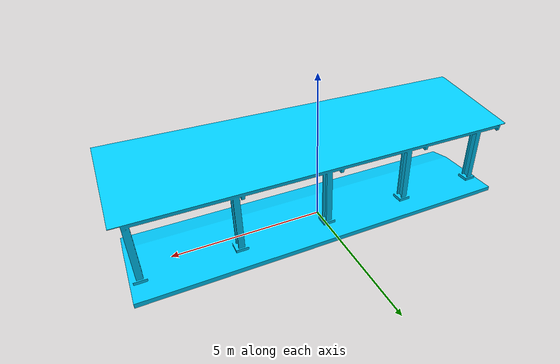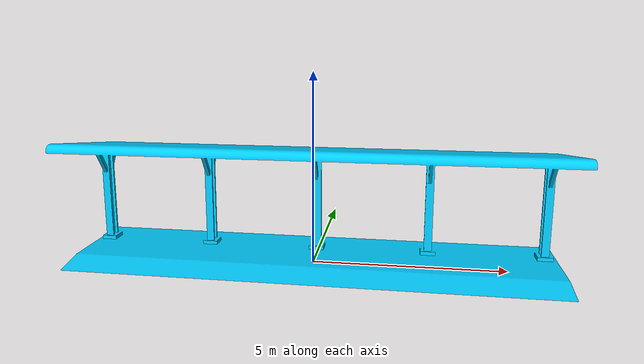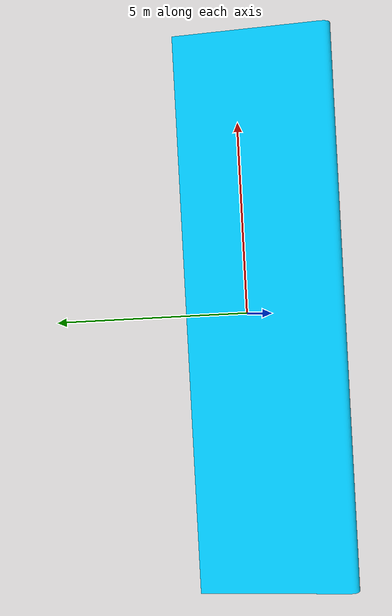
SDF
<?xml version="1.0" ?>
<sdf version="1.8">
  <model name="Parking_Area">
    <static>true</static>
    <link name="link">
      <collision name="collision">
        <geometry>
          <mesh>
            <uri>model://Parking_Area/Meshes/Parking_Area.stl</uri>
            <scale>0.001 0.001 0.001</scale>
          </mesh>
        </geometry>
      </collision>

      <visual name="visual">
        <geometry>
          <mesh>
            <uri>model://Parking_Area/Meshes/Parking_Area.stl</uri>
            <scale>0.001 0.001 0.001</scale>
          </mesh>
        </geometry>
        <material>
          <diffuse>0 0.8 1 1</diffuse>
        </material>
      </visual>
    </link>
  </model>
</sdf>
